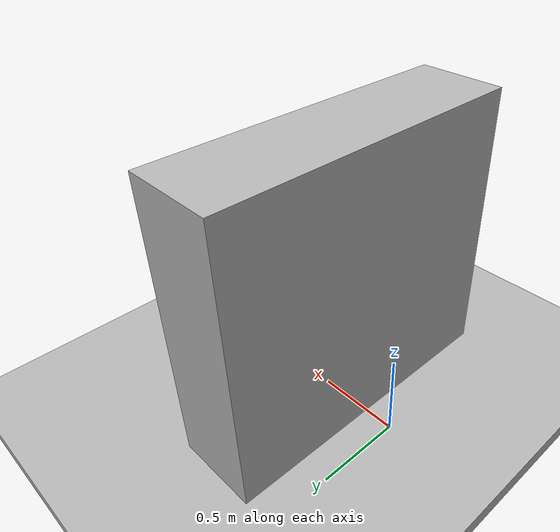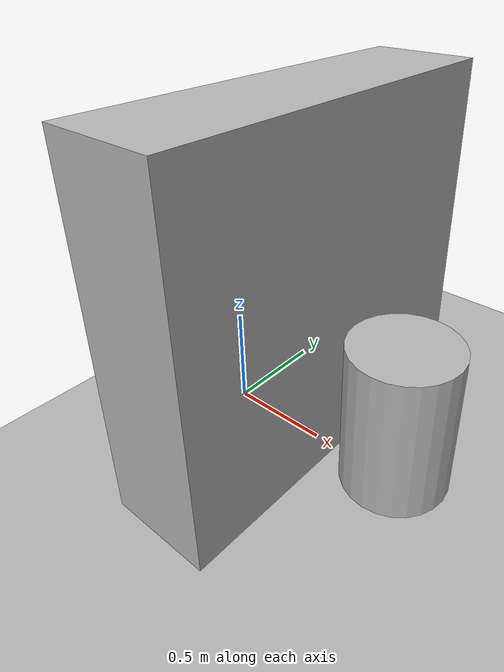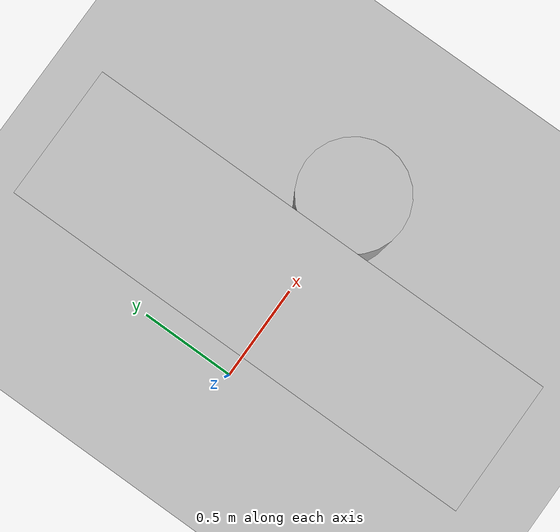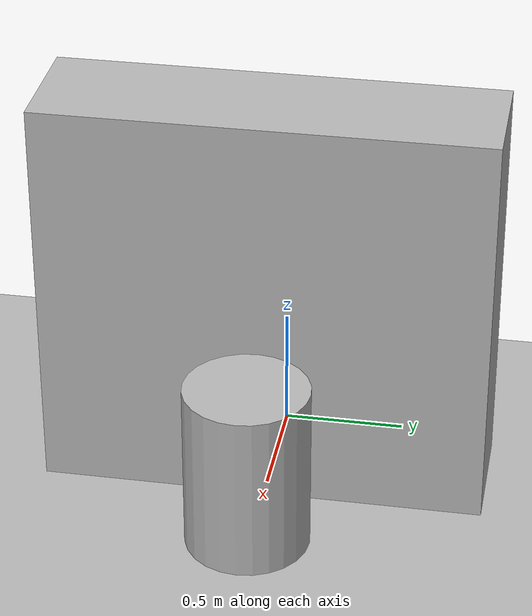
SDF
<?xml version="1.0"?>
<!-- Severe central occlusion; only narrow high/lateral viewpoints can clear it. -->
<sdf version="1.6">
  <world name="occlusion_severe">
    <physics name="1ms" type="ignored"><max_step_size>0.001</max_step_size><real_time_factor>1.0</real_time_factor></physics>
    <plugin filename="ignition-gazebo-physics-system" name="gz::sim::systems::Physics"/>
    <plugin filename="ignition-gazebo-sensors-system" name="gz::sim::systems::Sensors"><render_engine>ogre2</render_engine></plugin>
    <plugin filename="ignition-gazebo-user-commands-system" name="gz::sim::systems::UserCommands"/>
    <plugin filename="ignition-gazebo-scene-broadcaster-system" name="gz::sim::systems::SceneBroadcaster"/>
    <light type="directional" name="sun"><pose>0 0 5 0 0 0</pose><diffuse>0.8 0.8 0.8 1</diffuse><specular>0.2 0.2 0.2 1</specular><direction>-0.5 0.1 -0.9</direction></light>
    <model name="ground_plane"><static>true</static><link name="link"><collision name="collision"><geometry><box><size>10 10 0.1</size></box></geometry></collision><visual name="visual"><geometry><box><size>10 10 0.1</size></box></geometry></visual></link></model>
    <model name="occluder"><static>true</static><pose>0.40 0 0.85 0 0 0</pose><link name="link"><collision name="collision"><geometry><box><size>0.50 1.8 1.7</size></box></geometry></collision><visual name="visual"><geometry><box><size>0.50 1.8 1.7</size></box></geometry></visual></link></model>
    <model name="target_object"><static>true</static><pose>0.95 0 0.4 0 0 0</pose><link name="target_link"><collision name="collision"><geometry><cylinder><radius>0.25</radius><length>0.7</length></cylinder></geometry></collision><visual name="visual"><geometry><cylinder><radius>0.25</radius><length>0.7</length></cylinder></geometry></visual></link></model>
  </world>
</sdf>
